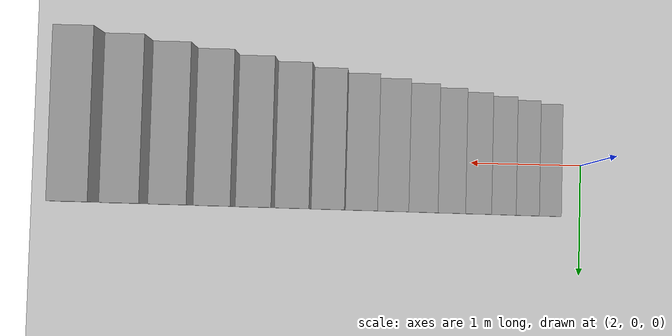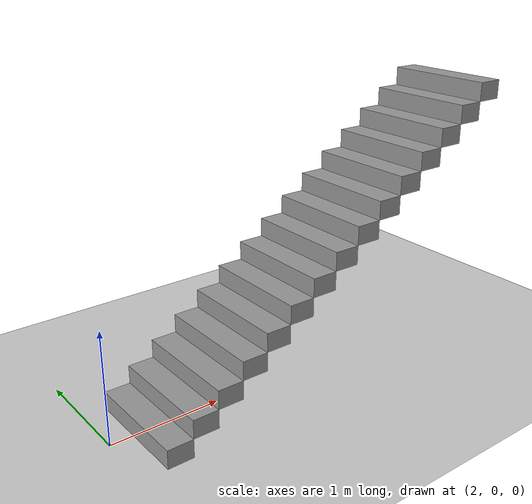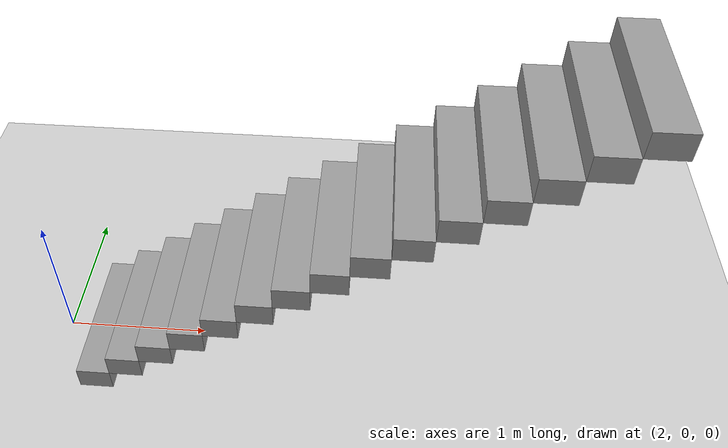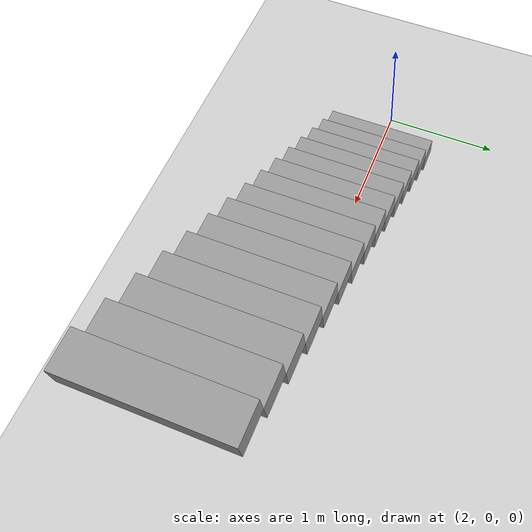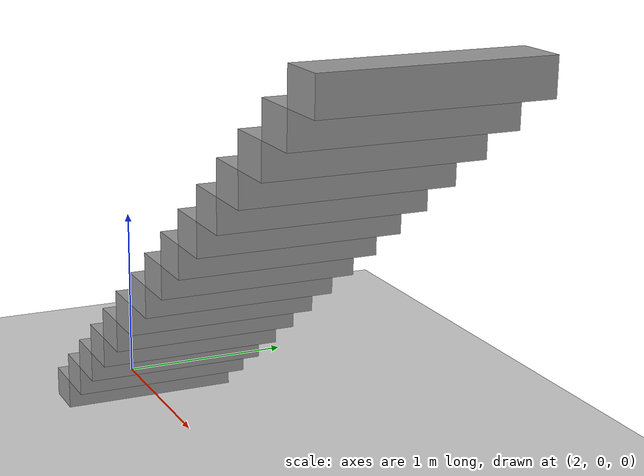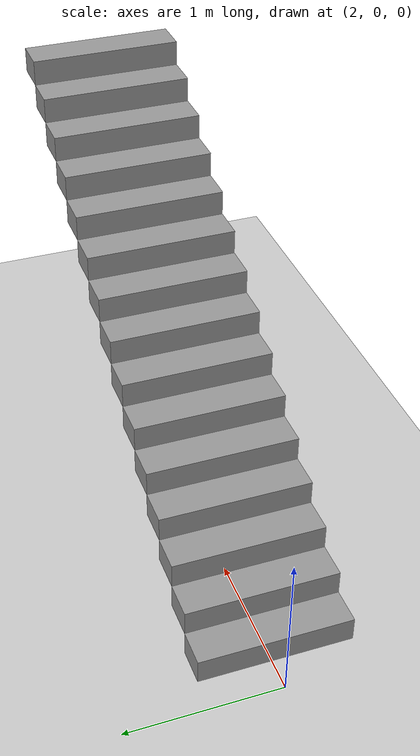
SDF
<sdf version='1.6'>
  <world name='default'>
    <physics name='default_physics' default='0' type='ode'>
      <max_step_size>0.0003</max_step_size>
      <real_time_update_rate>-1</real_time_update_rate>
      <ode>
        <solver>
          <iters>300</iters>
          <type>quick</type>
          <sor>1.3</sor>
          <use_dynamic_moi_rescaling>0</use_dynamic_moi_rescaling>
        </solver>
        <constraints>
          <cfm>0</cfm>
          <erp>0.2</erp>
          <contact_max_correcting_vel>100</contact_max_correcting_vel>
          <contact_surface_layer>0.001</contact_surface_layer>
        </constraints>
      </ode>
      <real_time_factor>1</real_time_factor>
    </physics>
    <model name='ground_plane'>
      <static>1</static>
      <link name='link'>
        <collision name='collision'>
          <geometry>
            <plane>
              <normal>0 0 1</normal>
              <size>100 100</size>
            </plane>
          </geometry>
          <surface>
            <contact>
              <collide_bitmask>65535</collide_bitmask>
              <ode/>
            </contact>
            <friction>
              <ode>
                <mu>100</mu>
                <mu2>50</mu2>
              </ode>
              <torsional>
                <ode/>
              </torsional>
            </friction>
            <bounce/>
          </surface>
          <max_contacts>10</max_contacts>
        </collision>
        <visual name='visual'>
          <cast_shadows>0</cast_shadows>
          <geometry>
            <plane>
              <normal>0 0 1</normal>
              <size>100 100</size>
            </plane>
          </geometry>
          <material>
            <script>
              <uri>file://media/materials/scripts/gazebo.material</uri>
              <name>Gazebo/Grey</name>
            </script>
          </material>
        </visual>
        <self_collide>0</self_collide>
        <enable_wind>0</enable_wind>
        <kinematic>0</kinematic>
      </link>
    </model>
    <light name='sun' type='directional'>
      <cast_shadows>1</cast_shadows>
      <pose frame=''>0 0 10 0 -0 0</pose>
      <diffuse>0.8 0.8 0.8 1</diffuse>
      <specular>0.2 0.2 0.2 1</specular>
      <attenuation>
        <range>1000</range>
        <constant>0.9</constant>
        <linear>0.01</linear>
        <quadratic>0.001</quadratic>
      </attenuation>
      <direction>-0.5 0.1 -0.9</direction>
    </light>
    <gravity>0 0 -9.8</gravity>
    <model name='right_ahead_stairs'>
      <pose frame=''>3.95809 -0.030978 0 0 -0 0</pose>
      <link name='Stairs_1'>
        <visual name='Stairs_1_Visual_0'>
          <pose frame=''>-1.63333 -0 0.083333 0 -0 1.5708</pose>
          <geometry>
            <box>
              <size>1 0.233333 0.166667</size>
            </box>
          </geometry>
          <material>
            <script>
              <uri>file://media/materials/scripts/gazebo.material</uri>
              <name>Gazebo/Grey</name>
            </script>
            <ambient>1 1 1 1</ambient>
          </material>
          <meta>
            <layer>0</layer>
          </meta>
        </visual>
        <collision name='Stairs_1_Collision_0'>
          <geometry>
            <box>
              <size>1 0.233333 0.166667</size>
            </box>
          </geometry>
          <pose frame=''>-1.63333 -0 0.083333 0 -0 1.5708</pose>
          <max_contacts>10</max_contacts>
          <surface>
            <contact>
              <ode/>
            </contact>
            <bounce/>
            <friction>
              <torsional>
                <ode/>
              </torsional>
              <ode/>
            </friction>
          </surface>
        </collision>
        <visual name='Stairs_1_Visual_1'>
          <pose frame=''>-1.4 -0 0.25 0 -0 1.5708</pose>
          <geometry>
            <box>
              <size>1 0.233333 0.166667</size>
            </box>
          </geometry>
          <material>
            <script>
              <uri>file://media/materials/scripts/gazebo.material</uri>
              <name>Gazebo/Grey</name>
            </script>
            <ambient>1 1 1 1</ambient>
          </material>
          <meta>
            <layer>0</layer>
          </meta>
        </visual>
        <collision name='Stairs_1_Collision_1'>
          <geometry>
            <box>
              <size>1 0.233333 0.166667</size>
            </box>
          </geometry>
          <pose frame=''>-1.4 -0 0.25 0 -0 1.5708</pose>
          <max_contacts>10</max_contacts>
          <surface>
            <contact>
              <ode/>
            </contact>
            <bounce/>
            <friction>
              <torsional>
                <ode/>
              </torsional>
              <ode/>
            </friction>
          </surface>
        </collision>
        <visual name='Stairs_1_Visual_2'>
          <pose frame=''>-1.16667 -0 0.416667 0 -0 1.5708</pose>
          <geometry>
            <box>
              <size>1 0.233333 0.166667</size>
            </box>
          </geometry>
          <material>
            <script>
              <uri>file://media/materials/scripts/gazebo.material</uri>
              <name>Gazebo/Grey</name>
            </script>
            <ambient>1 1 1 1</ambient>
          </material>
          <meta>
            <layer>0</layer>
          </meta>
        </visual>
        <collision name='Stairs_1_Collision_2'>
          <geometry>
            <box>
              <size>1 0.233333 0.166667</size>
            </box>
          </geometry>
          <pose frame=''>-1.16667 -0 0.416667 0 -0 1.5708</pose>
          <max_contacts>10</max_contacts>
          <surface>
            <contact>
              <ode/>
            </contact>
            <bounce/>
            <friction>
              <torsional>
                <ode/>
              </torsional>
              <ode/>
            </friction>
          </surface>
        </collision>
        <visual name='Stairs_1_Visual_3'>
          <pose frame=''>-0.933334 -0 0.583333 0 -0 1.5708</pose>
          <geometry>
            <box>
              <size>1 0.233333 0.166667</size>
            </box>
          </geometry>
          <material>
            <script>
              <uri>file://media/materials/scripts/gazebo.material</uri>
              <name>Gazebo/Grey</name>
            </script>
            <ambient>1 1 1 1</ambient>
          </material>
          <meta>
            <layer>0</layer>
          </meta>
        </visual>
        <collision name='Stairs_1_Collision_3'>
          <geometry>
            <box>
              <size>1 0.233333 0.166667</size>
            </box>
          </geometry>
          <pose frame=''>-0.933334 -0 0.583333 0 -0 1.5708</pose>
          <max_contacts>10</max_contacts>
          <surface>
            <contact>
              <ode/>
            </contact>
            <bounce/>
            <friction>
              <torsional>
                <ode/>
              </torsional>
              <ode/>
            </friction>
          </surface>
        </collision>
        <visual name='Stairs_1_Visual_4'>
          <pose frame=''>-0.7 -0 0.75 0 -0 1.5708</pose>
          <geometry>
            <box>
              <size>1 0.233333 0.166667</size>
            </box>
          </geometry>
          <material>
            <script>
              <uri>file://media/materials/scripts/gazebo.material</uri>
              <name>Gazebo/Grey</name>
            </script>
            <ambient>1 1 1 1</ambient>
          </material>
          <meta>
            <layer>0</layer>
          </meta>
        </visual>
        <collision name='Stairs_1_Collision_4'>
          <geometry>
            <box>
              <size>1 0.233333 0.166667</size>
            </box>
          </geometry>
          <pose frame=''>-0.7 -0 0.75 0 -0 1.5708</pose>
          <max_contacts>10</max_contacts>
          <surface>
            <contact>
              <ode/>
            </contact>
            <bounce/>
            <friction>
              <torsional>
                <ode/>
              </torsional>
              <ode/>
            </friction>
          </surface>
        </collision>
        <visual name='Stairs_1_Visual_5'>
          <pose frame=''>-0.466667 -0 0.916667 0 -0 1.5708</pose>
          <geometry>
            <box>
              <size>1 0.233333 0.166667</size>
            </box>
          </geometry>
          <material>
            <script>
              <uri>file://media/materials/scripts/gazebo.material</uri>
              <name>Gazebo/Grey</name>
            </script>
            <ambient>1 1 1 1</ambient>
          </material>
          <meta>
            <layer>0</layer>
          </meta>
        </visual>
        <collision name='Stairs_1_Collision_5'>
          <geometry>
            <box>
              <size>1 0.233333 0.166667</size>
            </box>
          </geometry>
          <pose frame=''>-0.466667 -0 0.916667 0 -0 1.5708</pose>
          <max_contacts>10</max_contacts>
          <surface>
            <contact>
              <ode/>
            </contact>
            <bounce/>
            <friction>
              <torsional>
                <ode/>
              </torsional>
              <ode/>
            </friction>
          </surface>
        </collision>
        <visual name='Stairs_1_Visual_6'>
          <pose frame=''>-0.233333 -0 1.08333 0 -0 1.5708</pose>
          <geometry>
            <box>
              <size>1 0.233333 0.166667</size>
            </box>
          </geometry>
          <material>
            <script>
              <uri>file://media/materials/scripts/gazebo.material</uri>
              <name>Gazebo/Grey</name>
            </script>
            <ambient>1 1 1 1</ambient>
          </material>
          <meta>
            <layer>0</layer>
          </meta>
        </visual>
        <collision name='Stairs_1_Collision_6'>
          <geometry>
            <box>
              <size>1 0.233333 0.166667</size>
            </box>
          </geometry>
          <pose frame=''>-0.233333 -0 1.08333 0 -0 1.5708</pose>
          <max_contacts>10</max_contacts>
          <surface>
            <contact>
              <ode/>
            </contact>
            <bounce/>
            <friction>
              <torsional>
                <ode/>
              </torsional>
              <ode/>
            </friction>
          </surface>
        </collision>
        <visual name='Stairs_1_Visual_7'>
          <pose frame=''>0 0 1.25 0 -0 1.5708</pose>
          <geometry>
            <box>
              <size>1 0.233333 0.166667</size>
            </box>
          </geometry>
          <material>
            <script>
              <uri>file://media/materials/scripts/gazebo.material</uri>
              <name>Gazebo/Grey</name>
            </script>
            <ambient>1 1 1 1</ambient>
          </material>
          <meta>
            <layer>0</layer>
          </meta>
        </visual>
        <collision name='Stairs_1_Collision_7'>
          <geometry>
            <box>
              <size>1 0.233333 0.166667</size>
            </box>
          </geometry>
          <pose frame=''>0 0 1.25 0 -0 1.5708</pose>
          <max_contacts>10</max_contacts>
          <surface>
            <contact>
              <ode/>
            </contact>
            <bounce/>
            <friction>
              <torsional>
                <ode/>
              </torsional>
              <ode/>
            </friction>
          </surface>
        </collision>
        <visual name='Stairs_1_Visual_8'>
          <pose frame=''>0.233333 0 1.41667 0 -0 1.5708</pose>
          <geometry>
            <box>
              <size>1 0.233333 0.166667</size>
            </box>
          </geometry>
          <material>
            <script>
              <uri>file://media/materials/scripts/gazebo.material</uri>
              <name>Gazebo/Grey</name>
            </script>
            <ambient>1 1 1 1</ambient>
          </material>
          <meta>
            <layer>0</layer>
          </meta>
        </visual>
        <collision name='Stairs_1_Collision_8'>
          <geometry>
            <box>
              <size>1 0.233333 0.166667</size>
            </box>
          </geometry>
          <pose frame=''>0.233333 0 1.41667 0 -0 1.5708</pose>
          <max_contacts>10</max_contacts>
          <surface>
            <contact>
              <ode/>
            </contact>
            <bounce/>
            <friction>
              <torsional>
                <ode/>
              </torsional>
              <ode/>
            </friction>
          </surface>
        </collision>
        <visual name='Stairs_1_Visual_9'>
          <pose frame=''>0.466667 0 1.58333 0 -0 1.5708</pose>
          <geometry>
            <box>
              <size>1 0.233333 0.166667</size>
            </box>
          </geometry>
          <material>
            <script>
              <uri>file://media/materials/scripts/gazebo.material</uri>
              <name>Gazebo/Grey</name>
            </script>
            <ambient>1 1 1 1</ambient>
          </material>
          <meta>
            <layer>0</layer>
          </meta>
        </visual>
        <collision name='Stairs_1_Collision_9'>
          <geometry>
            <box>
              <size>1 0.233333 0.166667</size>
            </box>
          </geometry>
          <pose frame=''>0.466667 0 1.58333 0 -0 1.5708</pose>
          <max_contacts>10</max_contacts>
          <surface>
            <contact>
              <ode/>
            </contact>
            <bounce/>
            <friction>
              <torsional>
                <ode/>
              </torsional>
              <ode/>
            </friction>
          </surface>
        </collision>
        <visual name='Stairs_1_Visual_10'>
          <pose frame=''>0.7 0 1.75 0 -0 1.5708</pose>
          <geometry>
            <box>
              <size>1 0.233333 0.166667</size>
            </box>
          </geometry>
          <material>
            <script>
              <uri>file://media/materials/scripts/gazebo.material</uri>
              <name>Gazebo/Grey</name>
            </script>
            <ambient>1 1 1 1</ambient>
          </material>
          <meta>
            <layer>0</layer>
          </meta>
        </visual>
        <collision name='Stairs_1_Collision_10'>
          <geometry>
            <box>
              <size>1 0.233333 0.166667</size>
            </box>
          </geometry>
          <pose frame=''>0.7 0 1.75 0 -0 1.5708</pose>
          <max_contacts>10</max_contacts>
          <surface>
            <contact>
              <ode/>
            </contact>
            <bounce/>
            <friction>
              <torsional>
                <ode/>
              </torsional>
              <ode/>
            </friction>
          </surface>
        </collision>
        <visual name='Stairs_1_Visual_11'>
          <pose frame=''>0.933334 0 1.91667 0 -0 1.5708</pose>
          <geometry>
            <box>
              <size>1 0.233333 0.166667</size>
            </box>
          </geometry>
          <material>
            <script>
              <uri>file://media/materials/scripts/gazebo.material</uri>
              <name>Gazebo/Grey</name>
            </script>
            <ambient>1 1 1 1</ambient>
          </material>
          <meta>
            <layer>0</layer>
          </meta>
        </visual>
        <collision name='Stairs_1_Collision_11'>
          <geometry>
            <box>
              <size>1 0.233333 0.166667</size>
            </box>
          </geometry>
          <pose frame=''>0.933334 0 1.91667 0 -0 1.5708</pose>
          <max_contacts>10</max_contacts>
          <surface>
            <contact>
              <ode/>
            </contact>
            <bounce/>
            <friction>
              <torsional>
                <ode/>
              </torsional>
              <ode/>
            </friction>
          </surface>
        </collision>
        <visual name='Stairs_1_Visual_12'>
          <pose frame=''>1.16667 0 2.08333 0 -0 1.5708</pose>
          <geometry>
            <box>
              <size>1 0.233333 0.166667</size>
            </box>
          </geometry>
          <material>
            <script>
              <uri>file://media/materials/scripts/gazebo.material</uri>
              <name>Gazebo/Grey</name>
            </script>
            <ambient>1 1 1 1</ambient>
          </material>
          <meta>
            <layer>0</layer>
          </meta>
        </visual>
        <collision name='Stairs_1_Collision_12'>
          <geometry>
            <box>
              <size>1 0.233333 0.166667</size>
            </box>
          </geometry>
          <pose frame=''>1.16667 0 2.08333 0 -0 1.5708</pose>
          <max_contacts>10</max_contacts>
          <surface>
            <contact>
              <ode/>
            </contact>
            <bounce/>
            <friction>
              <torsional>
                <ode/>
              </torsional>
              <ode/>
            </friction>
          </surface>
        </collision>
        <visual name='Stairs_1_Visual_13'>
          <pose frame=''>1.4 0 2.25 0 -0 1.5708</pose>
          <geometry>
            <box>
              <size>1 0.233333 0.166667</size>
            </box>
          </geometry>
          <material>
            <script>
              <uri>file://media/materials/scripts/gazebo.material</uri>
              <name>Gazebo/Grey</name>
            </script>
            <ambient>1 1 1 1</ambient>
          </material>
          <meta>
            <layer>0</layer>
          </meta>
        </visual>
        <collision name='Stairs_1_Collision_13'>
          <geometry>
            <box>
              <size>1 0.233333 0.166667</size>
            </box>
          </geometry>
          <pose frame=''>1.4 0 2.25 0 -0 1.5708</pose>
          <max_contacts>10</max_contacts>
          <surface>
            <contact>
              <ode/>
            </contact>
            <bounce/>
            <friction>
              <torsional>
                <ode/>
              </torsional>
              <ode/>
            </friction>
          </surface>
        </collision>
        <visual name='Stairs_1_Visual_14'>
          <pose frame=''>1.63333 0 2.41667 0 -0 1.5708</pose>
          <geometry>
            <box>
              <size>1 0.233333 0.166667</size>
            </box>
          </geometry>
          <material>
            <script>
              <uri>file://media/materials/scripts/gazebo.material</uri>
              <name>Gazebo/Grey</name>
            </script>
            <ambient>1 1 1 1</ambient>
          </material>
          <meta>
            <layer>0</layer>
          </meta>
        </visual>
        <collision name='Stairs_1_Collision_14'>
          <geometry>
            <box>
              <size>1 0.233333 0.166667</size>
            </box>
          </geometry>
          <pose frame=''>1.63333 0 2.41667 0 -0 1.5708</pose>
          <max_contacts>10</max_contacts>
          <surface>
            <contact>
              <ode/>
            </contact>
            <bounce/>
            <friction>
              <torsional>
                <ode/>
              </torsional>
              <ode/>
            </friction>
          </surface>
        </collision>
        <self_collide>0</self_collide>
        <enable_wind>0</enable_wind>
        <kinematic>0</kinematic>
      </link>
      <static>1</static>
    </model>
  </world>
</sdf>
